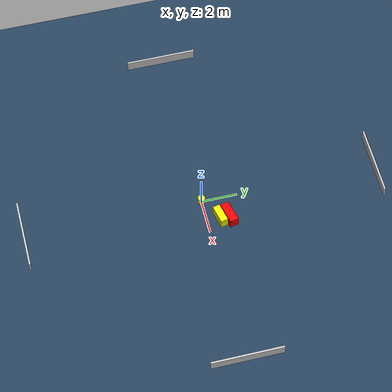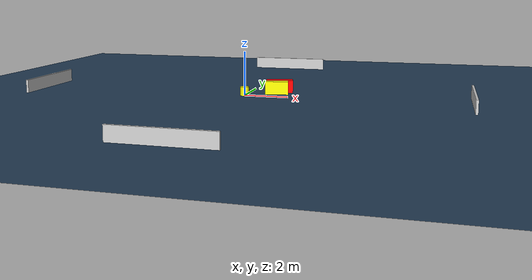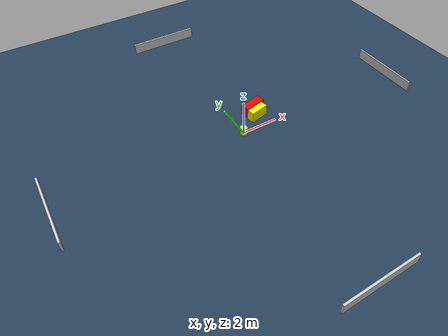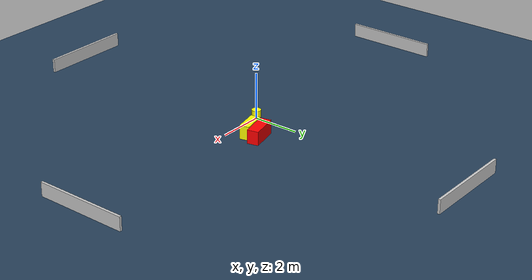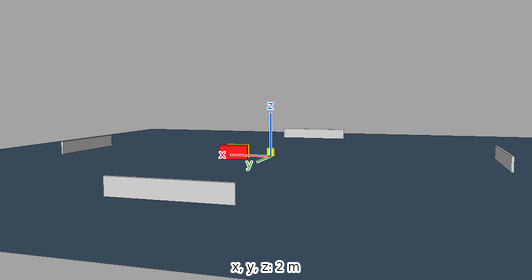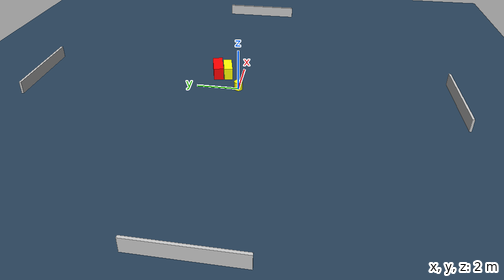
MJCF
<?xml version="1.0" ?>
<mujoco model="generated_environment">
  <option timestep="0.01" integrator="RK4" cone="elliptic"/>
  <default>
    <geom density="1"/>
  </default>
  <asset>
    <texture builtin="gradient" height="3072" name="skybox" rgb1="0.3 0.5 0.7" rgb2="0 0 0" type="skybox" width="512"/>
    <texture builtin="checker" height="300" name="groundplane" rgb1="0.2 0.3 0.4" rgb2="0.1 0.2 0.3" type="2d" width="300"/>
    <material name="groundplane" reflectance="0.2" texrepeat="5 5" texture="groundplane"/>
  </asset>
  <worldbody>
    <light dir="0 0 -1" directional="true" pos="0 0 1.5"/>
    <geom condim="3" friction="0.5 0.005 0.001" material="groundplane" name="floor" pos="0 0 0" size="0 0 0.05" type="plane"/>
    <body name="walls">
      <geom name="wall_1" condim="4" pos="-10.0 0.0 0.3" rgba="0.800000011920929 0.800000011920929 0.800000011920929 1.0" size="0.05 2.0 0.3" type="box"/>
      <geom name="wall_2" condim="4" pos="10.0 0.0 0.3" rgba="0.800000011920929 0.800000011920929 0.800000011920929 1.0" size="0.05 2.0 0.3" type="box"/>
      <geom name="wall_3" condim="4" pos="0.0 -10.0 0.3" rgba="0.800000011920929 0.800000011920929 0.800000011920929 1.0" size="2.0 0.05 0.3" type="box"/>
      <geom name="wall_4" condim="4" pos="0.0 10.0 0.3" rgba="0.800000011920929 0.800000011920929 0.800000011920929 1.0" size="2.0 0.05 0.3" type="box"/>
    </body>
    <body name="robot">
      <joint name="joint_x" type="slide" pos="0 0 0" axis="1 0 0"/>
      <joint name="joint_y" type="slide" pos="0 0 0" axis="0 1 0"/>
      <geom name="robot" type="cylinder" pos="0.0 0.0 0.2" size="0.2 0.2 0.0" mass="5.0" friction="1.0 0.005 0.0001" condim="4" rgba="1.0 1.0 0.0 1.0"/>
    </body>
    <body name="obstacle_1_movable">
      <geom name="obstacle_1_movable" condim="4" pos="1.328406622976206 0.7433761324936066 0.3" euler="0 0 282.8102779047867" friction="0.0 0.005 0.001" rgba="1.0 1.0 0.0 1.0" size="0.2052122288996985 0.5230872434443896 0.3" type="box" mass="0.1"/>
      <joint type="free"/>
    </body>
    <body name="obstacle_2_static">
      <geom name="obstacle_2_static" condim="4" pos="1.356218787807541 1.2462374794441617 0.3" euler="0 0 13.833549350613016" friction="0.0 0.005 0.001" rgba="1.0 0.0 0.0 1.0" size="0.6137395193266215 0.24208412254445785 0.3" type="box"/>
    </body>
  </worldbody>
  <actuator>
    <motor name="actuator_x" joint="joint_x" gear="1" ctrlrange="-1 1"/>
    <motor name="actuator_y" joint="joint_y" gear="1" ctrlrange="-1 1"/>
  </actuator>
</mujoco>
